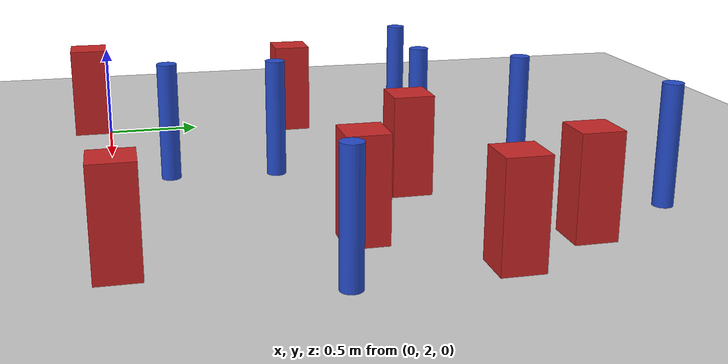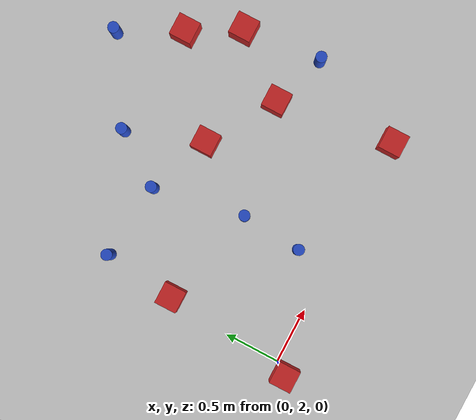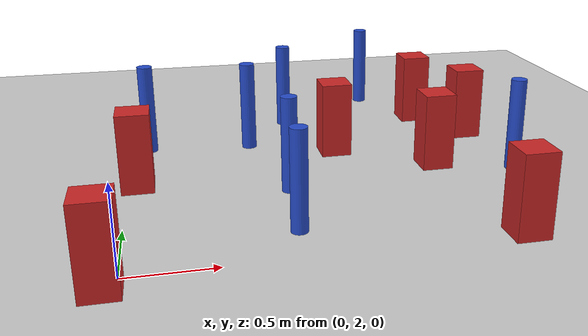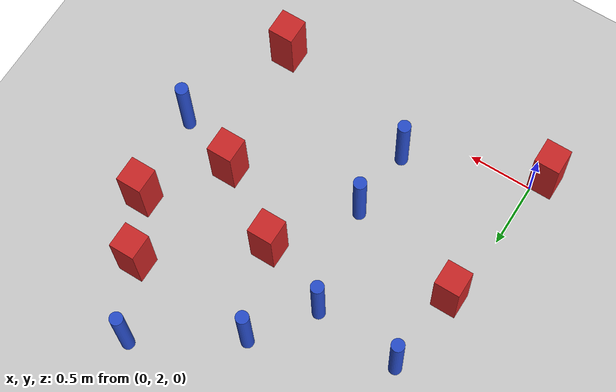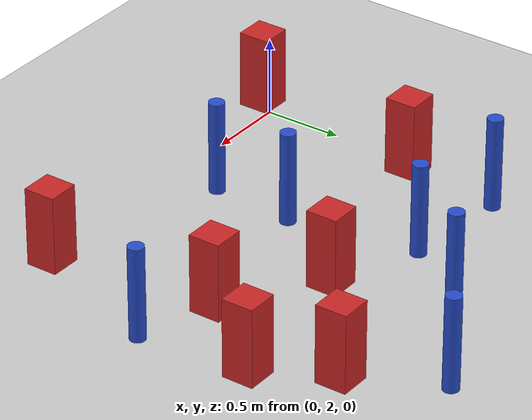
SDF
<sdf version="1.6">
 <world name="default">
  <model name="ground_plane">
   <static>1</static>
   <link name="link">
    <collision name="collision">
     <geometry><plane><normal>0 0 1</normal><size>100 100</size></plane></geometry>
     <surface><friction><ode><mu>100</mu><mu2>50</mu2></ode></friction></surface>
    </collision>
    <visual name="visual">
     <cast_shadows>0</cast_shadows>
     <geometry><plane><normal>0 0 1</normal><size>100 100</size></plane></geometry>
     <material>
      <ambient>1.0 1.0 1.0 1.0</ambient>
      <diffuse>0.8 0.8 0.8 1.0</diffuse>
      <specular>0.01 0.01 0.01 1.000000</specular>
     </material>
    </visual>
   </link>
  </model>
  <model name="pole_obstacle6">
   <static>true</static>
   <pose>1.87166272618 4.55720041785 2.88873142074e-08 -9.90536689852e-09 4.60219948989e-07 -1.2096599496e-07</pose>
   <link name="link">
    <pose>0 0 0.3 0 -0 0</pose>
    <inertial>
     <mass>1</mass>
     <inertia><ixx>0.145833</ixx><ixy>0</ixy><ixz>0</ixz><iyy>0.145833</iyy><iyz>0</iyz><izz>0.125</izz></inertia>
    </inertial>
    <collision name="collision">
     <geometry><cylinder><radius>0.05</radius><length>.6</length></cylinder></geometry>
    </collision>
    <visual name="visual">
     <geometry><cylinder><radius>0.05</radius><length>.6</length></cylinder></geometry>
     <material>
      <script><name>Gazebo/Blue</name><uri>file://media/materials/scripts/gazebo.material</uri></script>
     </material>
    </visual>
   </link>
  </model>
  <model name="square_post_obstacle16">
   <static>true</static>
   <pose>1.39110884034 3.42909888853 8.22691968438e-08 7.2212513382e-06 -7.54495500217e-07 2.29674213826e-05</pose>
   <link name="link">
    <pose>0 0 0.25 0 -0 0</pose>
    <inertial>
     <mass>100</mass>
     <inertia>
      <ixx>0.166667</ixx>
      <ixy>0</ixy>
      <ixz>0</ixz>
      <iyy>0.166667</iyy>
      <iyz>0</iyz>
      <izz>0.166667</izz>
     </inertia>
    </inertial>
    <collision name="collision"><geometry><box><size>.2 .2 .5</size></box></geometry></collision>
    <visual name="visual">
     <geometry><box><size>.2 .2 .5</size></box></geometry>
     <material>
      <script><name>Gazebo/Red</name><uri>file://media/materials/scripts/gazebo.material</uri></script>
     </material>
    </visual>
   </link>
  </model>
  <model name="pole_obstacle36">
   <static>true</static>
   <pose>0.980874277172 2.83846772094 2.88873142074e-08 -9.90536689802e-09 4.6021994899e-07 -1.2096599496e-07</pose>
   <link name="link">
    <pose>0 0 0.3 0 -0 0</pose>
    <inertial>
     <mass>1</mass>
     <inertia><ixx>0.145833</ixx><ixy>0</ixy><ixz>0</ixz><iyy>0.145833</iyy><iyz>0</iyz><izz>0.125</izz></inertia>
    </inertial>
    <collision name="collision">
     <geometry><cylinder><radius>0.05</radius><length>.6</length></cylinder></geometry>
    </collision>
    <visual name="visual">
     <geometry><cylinder><radius>0.05</radius><length>.6</length></cylinder></geometry>
     <material>
      <script><name>Gazebo/Blue</name><uri>file://media/materials/scripts/gazebo.material</uri></script>
     </material>
    </visual>
   </link>
  </model>
  <model name="square_post_obstacle60">
   <static>true</static>
   <pose>1.98158617814 3.0543041788 8.22691968438e-08 7.2212513382e-06 -7.54495500217e-07 2.29674213826e-05</pose>
   <link name="link">
    <pose>0 0 0.25 0 -0 0</pose>
    <inertial>
     <mass>100</mass>
     <inertia>
      <ixx>0.166667</ixx>
      <ixy>0</ixy>
      <ixz>0</ixz>
      <iyy>0.166667</iyy>
      <iyz>0</iyz>
      <izz>0.166667</izz>
     </inertia>
    </inertial>
    <collision name="collision"><geometry><box><size>.2 .2 .5</size></box></geometry></collision>
    <visual name="visual">
     <geometry><box><size>.2 .2 .5</size></box></geometry>
     <material>
      <script><name>Gazebo/Red</name><uri>file://media/materials/scripts/gazebo.material</uri></script>
     </material>
    </visual>
   </link>
  </model>
  <model name="pole_obstacle71">
   <static>true</static>
   <pose>1.14897890635 4.10012739988 2.88873142074e-08 -9.90536689852e-09 4.60219948989e-07 -1.2096599496e-07</pose>
   <link name="link">
    <pose>0 0 0.3 0 -0 0</pose>
    <inertial>
     <mass>1</mass>
     <inertia><ixx>0.145833</ixx><ixy>0</ixy><ixz>0</ixz><iyy>0.145833</iyy><iyz>0</iyz><izz>0.125</izz></inertia>
    </inertial>
    <collision name="collision">
     <geometry><cylinder><radius>0.05</radius><length>.6</length></cylinder></geometry>
    </collision>
    <visual name="visual">
     <geometry><cylinder><radius>0.05</radius><length>.6</length></cylinder></geometry>
     <material>
      <script><name>Gazebo/Blue</name><uri>file://media/materials/scripts/gazebo.material</uri></script>
     </material>
    </visual>
   </link>
  </model>
  <model name="square_post_obstacle90">
   <static>true</static>
   <pose>2.12691441632 2.00725225635 8.22691968438e-08 7.2212513382e-06 -7.54495500217e-07 2.29674213826e-05</pose>
   <link name="link">
    <pose>0 0 0.25 0 -0 0</pose>
    <inertial>
     <mass>100</mass>
     <inertia>
      <ixx>0.166667</ixx>
      <ixy>0</ixy>
      <ixz>0</ixz>
      <iyy>0.166667</iyy>
      <iyz>0</iyz>
      <izz>0.166667</izz>
     </inertia>
    </inertial>
    <collision name="collision"><geometry><box><size>.2 .2 .5</size></box></geometry></collision>
    <visual name="visual">
     <geometry><box><size>.2 .2 .5</size></box></geometry>
     <material>
      <script><name>Gazebo/Red</name><uri>file://media/materials/scripts/gazebo.material</uri></script>
     </material>
    </visual>
   </link>
  </model>
  <model name="square_post_obstacle97">
   <static>true</static>
   <pose>2.40002460607 3.58926754957 8.22691968438e-08 7.2212513382e-06 -7.54495500217e-07 2.29674213826e-05</pose>
   <link name="link">
    <pose>0 0 0.25 0 -0 0</pose>
    <inertial>
     <mass>100</mass>
     <inertia>
      <ixx>0.166667</ixx>
      <ixy>0</ixy>
      <ixz>0</ixz>
      <iyy>0.166667</iyy>
      <iyz>0</iyz>
      <izz>0.166667</izz>
     </inertia>
    </inertial>
    <collision name="collision"><geometry><box><size>.2 .2 .5</size></box></geometry></collision>
    <visual name="visual">
     <geometry><box><size>.2 .2 .5</size></box></geometry>
     <material>
      <script><name>Gazebo/Red</name><uri>file://media/materials/scripts/gazebo.material</uri></script>
     </material>
    </visual>
   </link>
  </model>
  <model name="square_post_obstacle103">
   <static>true</static>
   <pose>0.0758553075731 3.07109637773 8.22691968438e-08 7.2212513382e-06 -7.54495500217e-07 2.29674213826e-05</pose>
   <link name="link">
    <pose>0 0 0.25 0 -0 0</pose>
    <inertial>
     <mass>100</mass>
     <inertia>
      <ixx>0.166667</ixx>
      <ixy>0</ixy>
      <ixz>0</ixz>
      <iyy>0.166667</iyy>
      <iyz>0</iyz>
      <izz>0.166667</izz>
     </inertia>
    </inertial>
    <collision name="collision"><geometry><box><size>.2 .2 .5</size></box></geometry></collision>
    <visual name="visual">
     <geometry><box><size>.2 .2 .5</size></box></geometry>
     <material>
      <script><name>Gazebo/Red</name><uri>file://media/materials/scripts/gazebo.material</uri></script>
     </material>
    </visual>
   </link>
  </model>
  <model name="pole_obstacle125">
   <static>true</static>
   <pose>0.8290730016 3.64934899208 2.88873142074e-08 -9.90536689636e-09 4.60219948994e-07 -1.20965994958e-07</pose>
   <link name="link">
    <pose>0 0 0.3 0 -0 0</pose>
    <inertial>
     <mass>1</mass>
     <inertia><ixx>0.145833</ixx><ixy>0</ixy><ixz>0</ixz><iyy>0.145833</iyy><iyz>0</iyz><izz>0.125</izz></inertia>
    </inertial>
    <collision name="collision">
     <geometry><cylinder><radius>0.05</radius><length>.6</length></cylinder></geometry>
    </collision>
    <visual name="visual">
     <geometry><cylinder><radius>0.05</radius><length>.6</length></cylinder></geometry>
     <material>
      <script><name>Gazebo/Blue</name><uri>file://media/materials/scripts/gazebo.material</uri></script>
     </material>
    </visual>
   </link>
  </model>
  <model name="pole_obstacle136">
   <static>true</static>
   <pose>0.147412542536 3.71269143134 2.88873142074e-08 -9.90536692387e-09 4.60219948929e-07 -1.20965994988e-07</pose>
   <link name="link">
    <pose>0 0 0.3 0 -0 0</pose>
    <inertial>
     <mass>1</mass>
     <inertia><ixx>0.145833</ixx><ixy>0</ixy><ixz>0</ixz><iyy>0.145833</iyy><iyz>0</iyz><izz>0.125</izz></inertia>
    </inertial>
    <collision name="collision">
     <geometry><cylinder><radius>0.05</radius><length>.6</length></cylinder></geometry>
    </collision>
    <visual name="visual">
     <geometry><cylinder><radius>0.05</radius><length>.6</length></cylinder></geometry>
     <material>
      <script><name>Gazebo/Blue</name><uri>file://media/materials/scripts/gazebo.material</uri></script>
     </material>
    </visual>
   </link>
  </model>
  <model name="pole_obstacle145">
   <static>true</static>
   <pose>0.939317445899 2.29628000381 2.88873142074e-08 -9.90536689636e-09 4.60219948994e-07 -1.20965994958e-07</pose>
   <link name="link">
    <pose>0 0 0.3 0 -0 0</pose>
    <inertial>
     <mass>1</mass>
     <inertia><ixx>0.145833</ixx><ixy>0</ixy><ixz>0</ixz><iyy>0.145833</iyy><iyz>0</iyz><izz>0.125</izz></inertia>
    </inertial>
    <collision name="collision">
     <geometry><cylinder><radius>0.05</radius><length>.6</length></cylinder></geometry>
    </collision>
    <visual name="visual">
     <geometry><cylinder><radius>0.05</radius><length>.6</length></cylinder></geometry>
     <material>
      <script><name>Gazebo/Blue</name><uri>file://media/materials/scripts/gazebo.material</uri></script>
     </material>
    </visual>
   </link>
  </model>
  <model name="pole_obstacle169">
   <static>true</static>
   <pose>2.46897220637 2.88723407965 2.88873142074e-08 -9.90536690232e-09 4.6021994898e-07 -1.20965994968e-07</pose>
   <link name="link">
    <pose>0 0 0.3 0 -0 0</pose>
    <inertial>
     <mass>1</mass>
     <inertia><ixx>0.145833</ixx><ixy>0</ixy><ixz>0</ixz><iyy>0.145833</iyy><iyz>0</iyz><izz>0.125</izz></inertia>
    </inertial>
    <collision name="collision">
     <geometry><cylinder><radius>0.05</radius><length>.6</length></cylinder></geometry>
    </collision>
    <visual name="visual">
     <geometry><cylinder><radius>0.05</radius><length>.6</length></cylinder></geometry>
     <material>
      <script><name>Gazebo/Blue</name><uri>file://media/materials/scripts/gazebo.material</uri></script>
     </material>
    </visual>
   </link>
  </model>
  <model name="square_post_obstacle210">
   <static>true</static>
   <pose>-0.0713832827327 1.89626711512 8.22691968438e-08 7.2212513382e-06 -7.54495500217e-07 2.29674213826e-05</pose>
   <link name="link">
    <pose>0 0 0.25 0 -0 0</pose>
    <inertial>
     <mass>100</mass>
     <inertia>
      <ixx>0.166667</ixx>
      <ixy>0</ixy>
      <ixz>0</ixz>
      <iyy>0.166667</iyy>
      <iyz>0</iyz>
      <izz>0.166667</izz>
     </inertia>
    </inertial>
    <collision name="collision"><geometry><box><size>.2 .2 .5</size></box></geometry></collision>
    <visual name="visual">
     <geometry><box><size>.2 .2 .5</size></box></geometry>
     <material>
      <script><name>Gazebo/Red</name><uri>file://media/materials/scripts/gazebo.material</uri></script>
     </material>
    </visual>
   </link>
  </model>
  <model name="square_post_obstacle214">
   <static>true</static>
   <pose>2.15258936473 4.0271645349 8.22691968438e-08 7.22125133819e-06 -7.54495500217e-07 2.29674213826e-05</pose>
   <link name="link">
    <pose>0 0 0.25 0 -0 0</pose>
    <inertial>
     <mass>100</mass>
     <inertia>
      <ixx>0.166667</ixx>
      <ixy>0</ixy>
      <ixz>0</ixz>
      <iyy>0.166667</iyy>
      <iyz>0</iyz>
      <izz>0.166667</izz>
     </inertia>
    </inertial>
    <collision name="collision"><geometry><box><size>.2 .2 .5</size></box></geometry></collision>
    <visual name="visual">
     <geometry><box><size>.2 .2 .5</size></box></geometry>
     <material>
      <script><name>Gazebo/Red</name><uri>file://media/materials/scripts/gazebo.material</uri></script>
     </material>
    </visual>
   </link>
  </model>
 </world>
</sdf>
